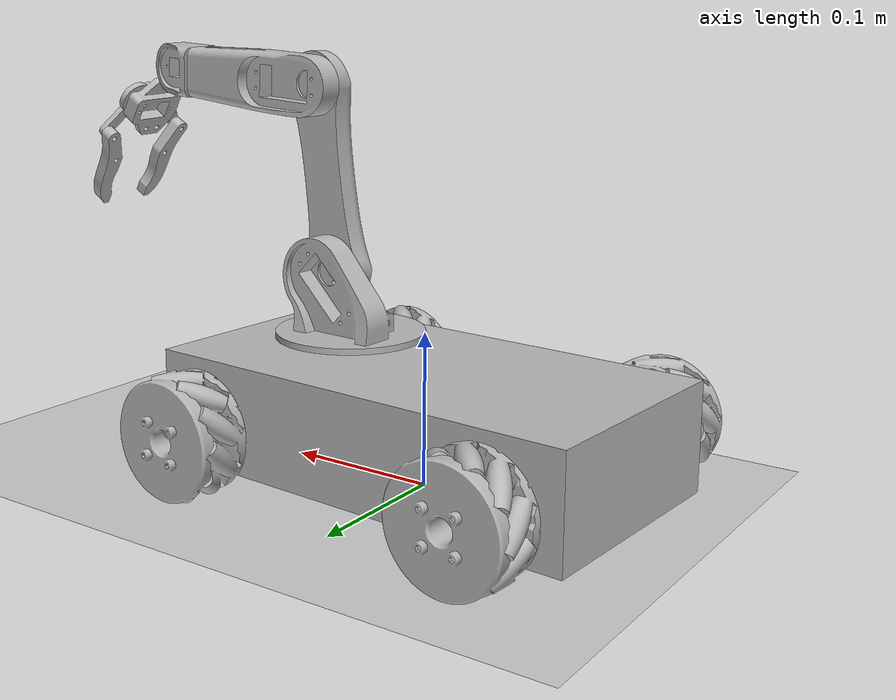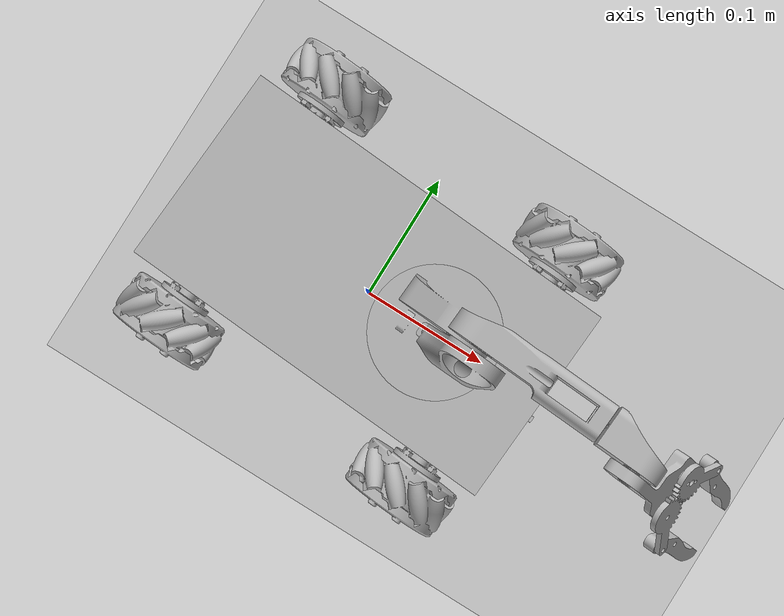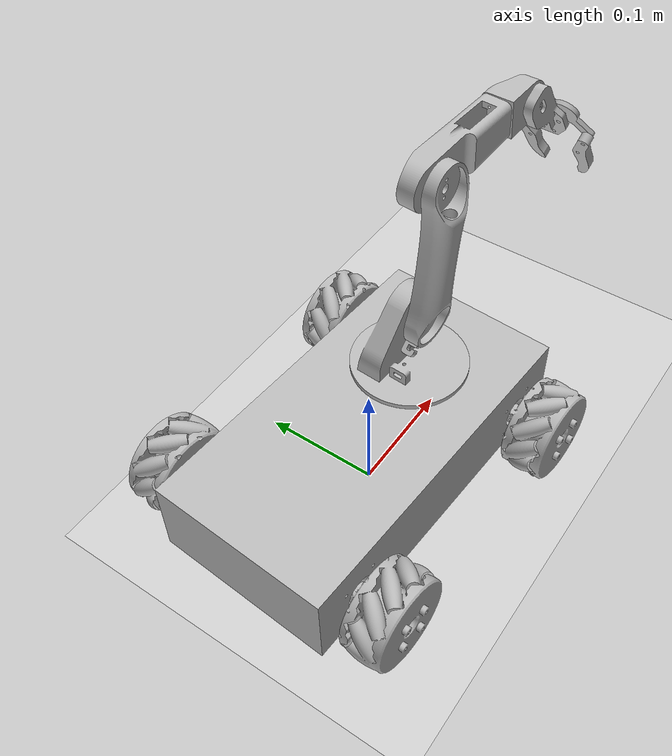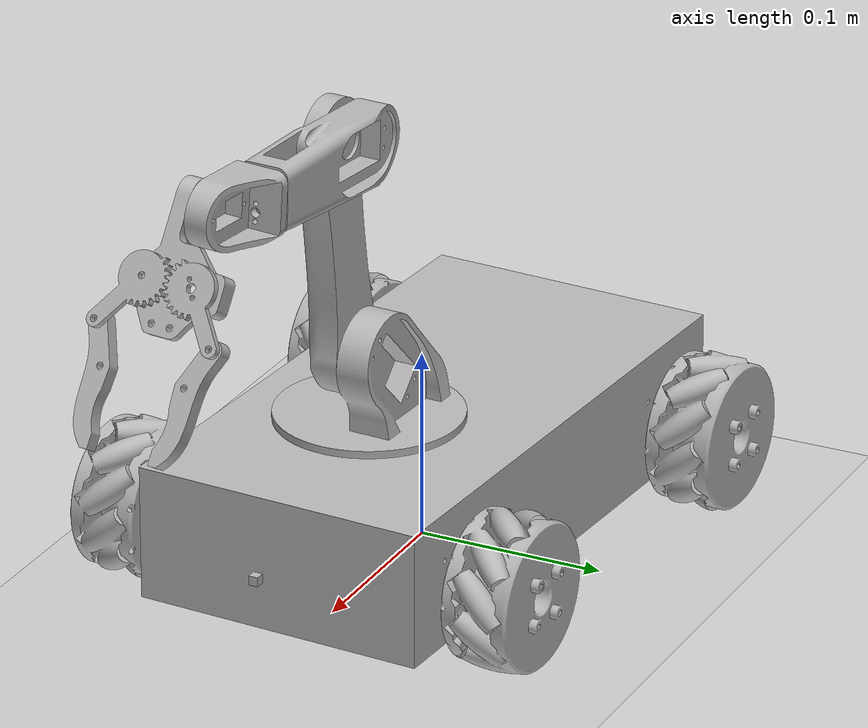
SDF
<sdf version="1.7">
 <world name="default">
  <light name="sun" type="directional">
   <pose>0 0 10 0 -0 0</pose>
   <diffuse>0.8 0.8 0.8 1</diffuse>
   <specular>0.2 0.2 0.2 1</specular>
   <attenuation>
    <range>1000</range>
    <constant>0.9</constant>
    <linear>0.01</linear>
    <quadratic>0.001</quadratic>
   </attenuation>
   <direction>-0.5 0.1 -0.9</direction>
   <spot><inner_angle>0</inner_angle><outer_angle>0</outer_angle><falloff>0</falloff></spot>
  </light>
  <model name="ground_plane">
   <static>1</static>
   <link name="link">
    <collision name="collision">
     <geometry><plane><normal>0 0 1</normal><size>100 100</size></plane></geometry>
     <surface><friction><ode><mu>100</mu><mu2>50</mu2></ode></friction></surface>
    </collision>
    <visual name="visual">
     <cast_shadows>0</cast_shadows>
     <geometry><plane><normal>0 0 1</normal><size>100 100</size></plane></geometry>
     <material>
      <script><uri>file://media/materials/scripts/gazebo.material</uri><name>Gazebo/Grey</name></script>
     </material>
    </visual>
   </link>
  </model>
  <gravity>0 0 -9.8</gravity>
  <magnetic_field>6e-06 2.3e-05 -4.2e-05</magnetic_field>
  <atmosphere type="adiabatic"/>
  <physics type="ode">
   <max_step_size>0.001</max_step_size>
   <real_time_factor>1</real_time_factor>
   <real_time_update_rate>1000</real_time_update_rate>
  </physics>
  <scene><ambient>0.4 0.4 0.4 1</ambient><background>0.7 0.7 0.7 1</background><shadows>1</shadows></scene>
  <audio><device>default</device></audio>
  <spherical_coordinates>
   <surface_model>EARTH_WGS84</surface_model>
   <latitude_deg>0</latitude_deg>
   <longitude_deg>0</longitude_deg>
   <elevation>0</elevation>
   <heading_deg>0</heading_deg>
  </spherical_coordinates>
  <model name="robot">
   <link name="base_footprint">
    <inertial>
     <pose>1.7e-05 -1e-06 0.043584 0 -0 0</pose>
     <mass>8.77909</mass>
     <inertia>
      <ixx>0.0307088</ixx>
      <ixy>1.50073e-06</ixy>
      <ixz>1.20974e-06</ixz>
      <iyy>0.0853345</iyy>
      <iyz>-7.95653e-08</iyz>
      <izz>0.102806</izz>
     </inertia>
    </inertial>
    <collision name="base_footprint_fixed_joint_lump__base_link_collision">
     <pose>0.15 0.06797 0.008 0 -0 0</pose>
     <geometry>
      <mesh><scale>0.001 0.001 0.001</scale><uri>model://mecanum_description/meshes/base_link.stl</uri></mesh>
     </geometry>
    </collision>
    <collision name="base_footprint_fixed_joint_lump__imu_link_1_collision_1">
     <pose>0.15 0.06797 0.008 0 -0 0</pose>
     <geometry>
      <mesh><scale>0.001 0.001 0.001</scale><uri>model://mecanum_description/meshes/imu_link_1.stl</uri></mesh>
     </geometry>
    </collision>
    <collision name="base_footprint_fixed_joint_lump__lidar_front_1_collision_2">
     <pose>0.15 0.05794 0 0 -0 0</pose>
     <geometry>
      <mesh><scale>0.001 0.001 0.001</scale><uri>model://mecanum_description/meshes/lidar_front_1.stl</uri></mesh>
     </geometry>
    </collision>
    <visual name="base_footprint_visual">
     <geometry><box><size>0.0001 0.0001 0.0001</size></box></geometry>
    </visual>
    <visual name="base_footprint_fixed_joint_lump__base_link_visual_1">
     <pose>0.15 0.06797 0.008 0 -0 0</pose>
     <geometry>
      <mesh><scale>0.001 0.001 0.001</scale><uri>model://mecanum_description/meshes/base_link.stl</uri></mesh>
     </geometry>
    </visual>
    <visual name="base_footprint_fixed_joint_lump__imu_link_1_visual_2">
     <pose>0.15 0.06797 0.008 0 -0 0</pose>
     <geometry>
      <mesh><scale>0.001 0.001 0.001</scale><uri>model://mecanum_description/meshes/imu_link_1.stl</uri></mesh>
     </geometry>
    </visual>
    <visual name="base_footprint_fixed_joint_lump__lidar_front_1_visual_3">
     <pose>0.15 0.05794 0 0 -0 0</pose>
     <geometry>
      <mesh><scale>0.001 0.001 0.001</scale><uri>model://mecanum_description/meshes/lidar_front_1.stl</uri></mesh>
     </geometry>
    </visual>
    <sensor name="imu_sensor" type="imu">
     <plugin name="imu_plugin" filename="libgazebo_ros_imu_sensor.so">
      <ros><namespace>/demo</namespace><remapping>~/out:=imu</remapping></ros>
      <initial_orientation_as_reference>0</initial_orientation_as_reference>
     </plugin>
     <always_on>1</always_on>
     <update_rate>100</update_rate>
     <visualize>1</visualize>
     <imu>
      <angular_velocity>
       <x>
        <noise type="gaussian">
         <mean>0</mean>
         <stddev>0.0002</stddev>
         <bias_mean>7.5e-06</bias_mean>
         <bias_stddev>8e-07</bias_stddev>
        </noise>
       </x>
       <y>
        <noise type="gaussian">
         <mean>0</mean>
         <stddev>0.0002</stddev>
         <bias_mean>7.5e-06</bias_mean>
         <bias_stddev>8e-07</bias_stddev>
        </noise>
       </y>
       <z>
        <noise type="gaussian">
         <mean>0</mean>
         <stddev>0.0002</stddev>
         <bias_mean>7.5e-06</bias_mean>
         <bias_stddev>8e-07</bias_stddev>
        </noise>
       </z>
      </angular_velocity>
      <linear_acceleration>
       <x>
        <noise type="gaussian">
         <mean>0</mean>
         <stddev>0.017</stddev>
         <bias_mean>0.1</bias_mean>
         <bias_stddev>0.001</bias_stddev>
        </noise>
       </x>
       <y>
        <noise type="gaussian">
         <mean>0</mean>
         <stddev>0.017</stddev>
         <bias_mean>0.1</bias_mean>
         <bias_stddev>0.001</bias_stddev>
        </noise>
       </y>
       <z>
        <noise type="gaussian">
         <mean>0</mean>
         <stddev>0.017</stddev>
         <bias_mean>0.1</bias_mean>
         <bias_stddev>0.001</bias_stddev>
        </noise>
       </z>
      </linear_acceleration>
     </imu>
     <pose>0 0 0.016 0 -0 0</pose>
    </sensor>
    <sensor name="lidar" type="ray">
     <always_on>1</always_on>
     <visualize>1</visualize>
     <update_rate>5</update_rate>
     <ray>
      <scan>
       <horizontal>
        <samples>360</samples>
        <resolution>1</resolution>
        <min_angle>0</min_angle>
        <max_angle>6.28</max_angle>
       </horizontal>
       <vertical><samples>1</samples><min_angle>0</min_angle><max_angle>0</max_angle></vertical>
      </scan>
      <range><min>0.12</min><max>3.5</max><resolution>0.015</resolution></range>
      <noise><type>gaussian</type><mean>0</mean><stddev>0.01</stddev></noise>
     </ray>
     <plugin name="scan" filename="libgazebo_ros_ray_sensor.so">
      <ros><remapping>~/out:=scan</remapping></ros>
      <output_type>sensor_msgs/LaserScan</output_type>
      <frame_name>lidar_front_1</frame_name>
     </plugin>
     <pose>0.15 -0.01003 0.0355 0 -0 0</pose>
    </sensor>
   </link>
   <joint name="rev_waist" type="revolute">
    <pose relative_to="base_footprint">0.05925 0 0.079 0 -0 0</pose>
    <parent>base_footprint</parent>
    <child>Waist-r4_1</child>
    <axis>
     <xyz>0 0 1</xyz>
     <limit><lower>-1e+16</lower><upper>1e+16</upper></limit>
     <dynamics><spring_reference>0</spring_reference><spring_stiffness>0</spring_stiffness></dynamics>
    </axis>
   </joint>
   <link name="Waist-r4_1">
    <pose relative_to="rev_waist">0 0 0 0 -0 0</pose>
    <inertial>
     <pose>0.001372 0.006434 0.025889 0 -0 0</pose>
     <mass>0.534096</mass>
     <inertia>
      <ixx>0.000353</ixx>
      <ixy>-5e-06</ixy>
      <ixz>-4.9e-05</ixz>
      <iyy>0.000456</iyy>
      <iyz>-4.1e-05</iyz>
      <izz>0.000429</izz>
     </inertia>
    </inertial>
    <collision name="Waist-r4_1_collision">
     <pose>0.09075 0.06797 -0.071 0 -0 0</pose>
     <geometry>
      <mesh><scale>0.001 0.001 0.001</scale><uri>model://mecanum_description/meshes/Waist-r4_1.stl</uri></mesh>
     </geometry>
    </collision>
    <visual name="Waist-r4_1_visual">
     <pose>0.09075 0.06797 -0.071 0 -0 0</pose>
     <geometry>
      <mesh><scale>0.001 0.001 0.001</scale><uri>model://mecanum_description/meshes/Waist-r4_1.stl</uri></mesh>
     </geometry>
    </visual>
   </link>
   <joint name="rev_shoulder" type="revolute">
    <pose relative_to="Waist-r4_1">0.013919 0.004 0.048876 0 -0 0</pose>
    <parent>Waist-r4_1</parent>
    <child>Arm_01-r4_1</child>
    <axis>
     <xyz>0 -1 0</xyz>
     <limit><lower>-1e+16</lower><upper>1e+16</upper></limit>
     <dynamics><spring_reference>0</spring_reference><spring_stiffness>0</spring_stiffness></dynamics>
    </axis>
   </joint>
   <link name="Arm_01-r4_1">
    <pose relative_to="rev_shoulder">0 0 0 0 -0 0</pose>
    <inertial>
     <pose>0.007276 -0.009968 0.058292 0 -0 0</pose>
     <mass>0.505447</mass>
     <inertia>
      <ixx>0.00085</ixx>
      <ixy>0</ixy>
      <ixz>-0.000107</ixz>
      <iyy>0.000903</iyy>
      <iyz>-1e-06</iyz>
      <izz>8.7e-05</izz>
     </inertia>
    </inertial>
    <collision name="Arm_01-r4_1_collision">
     <pose>0.076831 0.06397 -0.119876 0 -0 0</pose>
     <geometry>
      <mesh><scale>0.001 0.001 0.001</scale><uri>model://mecanum_description/meshes/Arm_01-r4_1.stl</uri></mesh>
     </geometry>
    </collision>
    <visual name="Arm_01-r4_1_visual">
     <pose>0.076831 0.06397 -0.119876 0 -0 0</pose>
     <geometry>
      <mesh><scale>0.001 0.001 0.001</scale><uri>model://mecanum_description/meshes/Arm_01-r4_1.stl</uri></mesh>
     </geometry>
    </visual>
   </link>
   <joint name="rev_elbow" type="revolute">
    <pose relative_to="Arm_01-r4_1">0.015353 -0.0022 0.119168 0 -0 0</pose>
    <parent>Arm_01-r4_1</parent>
    <child>Arm_02_v3-r4_1</child>
    <axis>
     <xyz>0 -1 0</xyz>
     <limit><lower>-1e+16</lower><upper>1e+16</upper></limit>
     <dynamics><spring_reference>0</spring_reference><spring_stiffness>0</spring_stiffness></dynamics>
    </axis>
   </joint>
   <link name="Arm_02_v3-r4_1">
    <pose relative_to="rev_elbow">0 0 0 0 -0 0</pose>
    <inertial>
     <pose>0.039213 0.010609 0.002415 0 -0 0</pose>
     <mass>0.39461</mass>
     <inertia>
      <ixx>7.4e-05</ixx>
      <ixy>-2e-06</ixy>
      <ixz>-2e-05</ixz>
      <iyy>0.000456</iyy>
      <iyz>0</iyz>
      <izz>0.000428</izz>
     </inertia>
    </inertial>
    <collision name="Arm_02_v3-r4_1_collision">
     <pose>0.061478 0.06617 -0.239044 0 -0 0</pose>
     <geometry>
      <mesh><scale>0.001 0.001 0.001</scale><uri>model://mecanum_description/meshes/Arm_02_v3-r4_1.stl</uri></mesh>
     </geometry>
    </collision>
    <visual name="Arm_02_v3-r4_1_visual">
     <pose>0.061478 0.06617 -0.239044 0 -0 0</pose>
     <geometry>
      <mesh><scale>0.001 0.001 0.001</scale><uri>model://mecanum_description/meshes/Arm_02_v3-r4_1.stl</uri></mesh>
     </geometry>
    </visual>
   </link>
   <joint name="rev_wrist" type="revolute">
    <pose relative_to="Arm_02_v3-r4_1">0.089892 0.0107 -0.000159 0 -0 0</pose>
    <parent>Arm_02_v3-r4_1</parent>
    <child>Arm_03-r4_1</child>
    <axis>
     <xyz>0.998519 0 0.054413</xyz>
     <limit><lower>-1e+16</lower><upper>1e+16</upper></limit>
     <dynamics><spring_reference>0</spring_reference><spring_stiffness>0</spring_stiffness></dynamics>
    </axis>
   </joint>
   <link name="Arm_03-r4_1">
    <pose relative_to="rev_wrist">0 0 0 0 -0 0</pose>
    <inertial>
     <pose>0.01938 -0.005114 0.006263 0 -0 0</pose>
     <mass>0.129528</mass>
     <inertia>
      <ixx>2.1e-05</ixx>
      <ixy>5e-06</ixy>
      <ixz>-1e-06</ixz>
      <iyy>3.9e-05</iyy>
      <iyz>0</iyz>
      <izz>3.1e-05</izz>
     </inertia>
    </inertial>
    <collision name="Arm_03-r4_1_collision">
     <pose>-0.028414 0.05547 -0.238885 0 -0 0</pose>
     <geometry>
      <mesh><scale>0.001 0.001 0.001</scale><uri>model://mecanum_description/meshes/Arm_03-r4_1.stl</uri></mesh>
     </geometry>
    </collision>
    <visual name="Arm_03-r4_1_visual">
     <pose>-0.028414 0.05547 -0.238885 0 -0 0</pose>
     <geometry>
      <mesh><scale>0.001 0.001 0.001</scale><uri>model://mecanum_description/meshes/Arm_03-r4_1.stl</uri></mesh>
     </geometry>
    </visual>
   </link>
   <joint name="rev_effector" type="revolute">
    <pose relative_to="Arm_03-r4_1">0.029511 -0.013847 0.007027 0 -0 0</pose>
    <parent>Arm_03-r4_1</parent>
    <child>Gripper_base-r4_1</child>
    <axis>
     <xyz>0.001606 0.999564 -0.029478</xyz>
     <limit><lower>-1e+16</lower><upper>1e+16</upper></limit>
     <dynamics><spring_reference>0</spring_reference><spring_stiffness>0</spring_stiffness></dynamics>
    </axis>
   </joint>
   <link name="Gripper_base-r4_1">
    <pose relative_to="rev_effector">0 0 0 0 -0 0</pose>
    <inertial>
     <pose>0.017263 9.7e-05 -0.017054 0 -0 0</pose>
     <mass>0.123413</mass>
     <inertia>
      <ixx>4.2e-05</ixx>
      <ixy>-7e-06</ixy>
      <ixz>2.5e-05</ixz>
      <iyy>5.7e-05</iyy>
      <iyz>8e-06</iyz>
      <izz>4.1e-05</izz>
     </inertia>
    </inertial>
    <collision name="Gripper_base-r4_1_collision">
     <pose>-0.057925 0.069317 -0.245912 0 -0 0</pose>
     <geometry>
      <mesh>
       <scale>0.001 0.001 0.001</scale>
       <uri>model://mecanum_description/meshes/Gripper_base-r4_1.stl</uri>
      </mesh>
     </geometry>
    </collision>
    <visual name="Gripper_base-r4_1_visual">
     <pose>-0.057925 0.069317 -0.245912 0 -0 0</pose>
     <geometry>
      <mesh>
       <scale>0.001 0.001 0.001</scale>
       <uri>model://mecanum_description/meshes/Gripper_base-r4_1.stl</uri>
      </mesh>
     </geometry>
    </visual>
   </link>
   <joint name="lgear" type="revolute">
    <pose relative_to="Gripper_base-r4_1">0.031814 0.015753 -0.025566 0 -0 0</pose>
    <parent>Gripper_base-r4_1</parent>
    <child>gear2-r4_1</child>
    <axis>
     <xyz>0.852736 0.014028 0.522154</xyz>
     <limit><lower>-1e+16</lower><upper>1e+16</upper></limit>
     <dynamics><spring_reference>0</spring_reference><spring_stiffness>0</spring_stiffness></dynamics>
    </axis>
   </joint>
   <link name="gear2-r4_1">
    <pose relative_to="lgear">0 0 0 0 -0 0</pose>
    <inertial>
     <pose>0.007291 0.002733 -0.001447 0 -0 0</pose>
     <mass>0.020142</mass>
     <inertia>
      <ixx>3e-06</ixx>
      <ixy>-1e-06</ixy>
      <ixz>1e-06</ixz>
      <iyy>2e-06</iyy>
      <iyz>1e-06</iyz>
      <izz>2e-06</izz>
     </inertia>
    </inertial>
    <collision name="gear2-r4_1_collision">
     <pose>-0.089739 0.053564 -0.220346 0 -0 0</pose>
     <geometry>
      <mesh><scale>0.001 0.001 0.001</scale><uri>model://mecanum_description/meshes/gear2-r4_1.stl</uri></mesh>
     </geometry>
    </collision>
    <visual name="gear2-r4_1_visual">
     <pose>-0.089739 0.053564 -0.220346 0 -0 0</pose>
     <geometry>
      <mesh><scale>0.001 0.001 0.001</scale><uri>model://mecanum_description/meshes/gear2-r4_1.stl</uri></mesh>
     </geometry>
    </visual>
   </link>
   <joint name="lfinger_mimic" type="revolute">
    <pose relative_to="gear2-r4_1">0.016111 0.017188 -0.02007 0 -0 0</pose>
    <parent>gear2-r4_1</parent>
    <child>Gripper_finger-r4_1</child>
    <axis>
     <xyz>0.852736 0.014028 0.522154</xyz>
     <limit><lower>-1e+16</lower><upper>1e+16</upper></limit>
     <dynamics><spring_reference>0</spring_reference><spring_stiffness>0</spring_stiffness></dynamics>
    </axis>
   </joint>
   <link name="Gripper_finger-r4_1">
    <pose relative_to="lfinger_mimic">0 0 0 0 -0 0</pose>
    <inertial>
     <pose>0.010193 -0.00728 -0.024589 0 -0 0</pose>
     <mass>0.0423698</mass>
     <inertia>
      <ixx>1e-05</ixx>
      <ixy>1e-06</ixy>
      <ixz>5e-06</ixz>
      <iyy>1.3e-05</iyy>
      <iyz>-2e-06</iyz>
      <izz>5e-06</izz>
     </inertia>
    </inertial>
    <collision name="Gripper_finger-r4_1_collision">
     <pose>-0.10585 0.036376 -0.200276 0 -0 0</pose>
     <geometry>
      <mesh>
       <scale>0.001 0.001 0.001</scale>
       <uri>model://mecanum_description/meshes/Gripper_finger-r4_1.stl</uri>
      </mesh>
     </geometry>
    </collision>
    <visual name="Gripper_finger-r4_1_visual">
     <pose>-0.10585 0.036376 -0.200276 0 -0 0</pose>
     <geometry>
      <mesh>
       <scale>0.001 0.001 0.001</scale>
       <uri>model://mecanum_description/meshes/Gripper_finger-r4_1.stl</uri>
      </mesh>
     </geometry>
    </visual>
   </link>
   <joint name="rgear" type="revolute">
    <pose relative_to="Gripper_base-r4_1">0.031771 -0.011136 -0.024773 0 -0 0</pose>
    <parent>Gripper_base-r4_1</parent>
    <child>gear1-r4_1</child>
    <axis>
     <xyz>0.852736 0.014028 0.522154</xyz>
     <limit><lower>-1e+16</lower><upper>1e+16</upper></limit>
     <dynamics><spring_reference>0</spring_reference><spring_stiffness>0</spring_stiffness></dynamics>
    </axis>
   </joint>
   <link name="gear1-r4_1">
    <pose relative_to="rgear">0 0 0 0 -0 0</pose>
    <inertial>
     <pose>0.007239 -0.002804 -0.001214 0 -0 0</pose>
     <mass>0.0207367</mass>
     <inertia>
      <ixx>3e-06</ixx>
      <ixy>1e-06</ixy>
      <ixz>1e-06</ixz>
      <iyy>2e-06</iyy>
      <iyz>-1e-06</iyz>
      <izz>2e-06</izz>
     </inertia>
    </inertial>
    <collision name="gear1-r4_1_collision">
     <pose>-0.089696 0.080453 -0.221139 0 -0 0</pose>
     <geometry>
      <mesh><scale>0.001 0.001 0.001</scale><uri>model://mecanum_description/meshes/gear1-r4_1.stl</uri></mesh>
     </geometry>
    </collision>
    <visual name="gear1-r4_1_visual">
     <pose>-0.089696 0.080453 -0.221139 0 -0 0</pose>
     <geometry>
      <mesh><scale>0.001 0.001 0.001</scale><uri>model://mecanum_description/meshes/gear1-r4_1.stl</uri></mesh>
     </geometry>
    </visual>
   </link>
   <joint name="rfinger_mimic" type="revolute">
    <pose relative_to="gear1-r4_1">0.016021 -0.018479 -0.018965 0 -0 0</pose>
    <parent>gear1-r4_1</parent>
    <child>Gripper_finger-r4_2</child>
    <axis>
     <xyz>-0.852736 -0.014028 -0.522154</xyz>
     <limit><lower>-1e+16</lower><upper>1e+16</upper></limit>
     <dynamics><spring_reference>0</spring_reference><spring_stiffness>0</spring_stiffness></dynamics>
    </axis>
   </joint>
   <link name="Gripper_finger-r4_2">
    <pose relative_to="rfinger_mimic">0 0 0 0 -0 0</pose>
    <inertial>
     <pose>0.010302 0.005041 -0.025099 0 -0 0</pose>
     <mass>0.0423698</mass>
     <inertia>
      <ixx>1e-05</ixx>
      <ixy>-1e-06</ixy>
      <ixz>6e-06</ixz>
      <iyy>1.3e-05</iyy>
      <iyz>1e-06</iyz>
      <izz>4e-06</izz>
     </inertia>
    </inertial>
    <collision name="Gripper_finger-r4_2_collision">
     <pose>-0.105717 0.098932 -0.202174 0 -0 0</pose>
     <geometry>
      <mesh>
       <scale>0.001 0.001 0.001</scale>
       <uri>model://mecanum_description/meshes/Gripper_finger-r4_2.stl</uri>
      </mesh>
     </geometry>
    </collision>
    <visual name="Gripper_finger-r4_2_visual">
     <pose>-0.105717 0.098932 -0.202174 0 -0 0</pose>
     <geometry>
      <mesh>
       <scale>0.001 0.001 0.001</scale>
       <uri>model://mecanum_description/meshes/Gripper_finger-r4_2.stl</uri>
      </mesh>
     </geometry>
    </visual>
   </link>
   <joint name="wheel_bl" type="revolute">
    <pose relative_to="base_footprint">-0.105 0.078 0.038 0 -0 0</pose>
    <parent>base_footprint</parent>
    <child>Mecanum_Wheel_Assembly_Left-r4_1</child>
    <axis>
     <xyz>0 1 0</xyz>
     <limit><lower>-1e+16</lower><upper>1e+16</upper></limit>
     <dynamics><spring_reference>0</spring_reference><spring_stiffness>0</spring_stiffness></dynamics>
    </axis>
   </joint>
   <link name="Mecanum_Wheel_Assembly_Left-r4_1">
    <pose relative_to="wheel_bl">0 0 0 0 -0 0</pose>
    <inertial>
     <pose>-0 0.026897 1.5e-05 0 -0 0</pose>
     <mass>0.95843</mass>
     <inertia>
      <ixx>0.000493</ixx>
      <ixy>0</ixy>
      <ixz>0</ixz>
      <iyy>0.000706</iyy>
      <iyz>0</iyz>
      <izz>0.000493</izz>
     </inertia>
    </inertial>
    <collision name="Mecanum_Wheel_Assembly_Left-r4_1_collision">
     <pose>0.255 -0.01003 -0.03 0 -0 0</pose>
     <geometry>
      <mesh>
       <scale>0.001 0.001 0.001</scale>
       <uri>model://mecanum_description/meshes/Mecanum_Wheel_Assembly_Left-r4_1.stl</uri>
      </mesh>
     </geometry>
    </collision>
    <visual name="Mecanum_Wheel_Assembly_Left-r4_1_visual">
     <pose>0.255 -0.01003 -0.03 0 -0 0</pose>
     <geometry>
      <mesh>
       <scale>0.001 0.001 0.001</scale>
       <uri>model://mecanum_description/meshes/Mecanum_Wheel_Assembly_Left-r4_1.stl</uri>
      </mesh>
     </geometry>
    </visual>
   </link>
   <joint name="wheel_br" type="revolute">
    <pose relative_to="base_footprint">-0.105 -0.078 0.038 0 -0 0</pose>
    <parent>base_footprint</parent>
    <child>Mecanum_Wheel_Assembly_Right-r4_2</child>
    <axis>
     <xyz>0 1 0</xyz>
     <limit><lower>-1e+16</lower><upper>1e+16</upper></limit>
     <dynamics><spring_reference>0</spring_reference><spring_stiffness>0</spring_stiffness></dynamics>
    </axis>
   </joint>
   <link name="Mecanum_Wheel_Assembly_Right-r4_2">
    <pose relative_to="wheel_br">0 0 0 0 -0 0</pose>
    <inertial>
     <pose>-1.5e-05 -0.026871 -0 0 -0 0</pose>
     <mass>0.952524</mass>
     <inertia>
      <ixx>0.000492</ixx>
      <ixy>0</ixy>
      <ixz>0</ixz>
      <iyy>0.000705</iyy>
      <iyz>0</iyz>
      <izz>0.000492</izz>
     </inertia>
    </inertial>
    <collision name="Mecanum_Wheel_Assembly_Right-r4_2_collision">
     <pose>0.255 0.14597 -0.03 0 -0 0</pose>
     <geometry>
      <mesh>
       <scale>0.001 0.001 0.001</scale>
       <uri>model://mecanum_description/meshes/Mecanum_Wheel_Assembly_Right-r4_2.stl</uri>
      </mesh>
     </geometry>
    </collision>
    <visual name="Mecanum_Wheel_Assembly_Right-r4_2_visual">
     <pose>0.255 0.14597 -0.03 0 -0 0</pose>
     <geometry>
      <mesh>
       <scale>0.001 0.001 0.001</scale>
       <uri>model://mecanum_description/meshes/Mecanum_Wheel_Assembly_Right-r4_2.stl</uri>
      </mesh>
     </geometry>
    </visual>
   </link>
   <joint name="wheel_fl" type="revolute">
    <pose relative_to="base_footprint">0.105 0.078 0.038 0 -0 0</pose>
    <parent>base_footprint</parent>
    <child>Mecanum_Wheel_Assembly_Right-r4_1</child>
    <axis>
     <xyz>0 1 0</xyz>
     <limit><lower>-1e+16</lower><upper>1e+16</upper></limit>
     <dynamics><spring_reference>0</spring_reference><spring_stiffness>0</spring_stiffness></dynamics>
    </axis>
   </joint>
   <link name="Mecanum_Wheel_Assembly_Right-r4_1">
    <pose relative_to="wheel_fl">0 0 0 0 -0 0</pose>
    <inertial>
     <pose>-1.5e-05 0.02687 0 0 -0 0</pose>
     <mass>0.952524</mass>
     <inertia>
      <ixx>0.000492</ixx>
      <ixy>0</ixy>
      <ixz>0</ixz>
      <iyy>0.000705</iyy>
      <iyz>0</iyz>
      <izz>0.000492</izz>
     </inertia>
    </inertial>
    <collision name="Mecanum_Wheel_Assembly_Right-r4_1_collision">
     <pose>0.045 -0.01003 -0.03 0 -0 0</pose>
     <geometry>
      <mesh>
       <scale>0.001 0.001 0.001</scale>
       <uri>model://mecanum_description/meshes/Mecanum_Wheel_Assembly_Right-r4_1.stl</uri>
      </mesh>
     </geometry>
    </collision>
    <visual name="Mecanum_Wheel_Assembly_Right-r4_1_visual">
     <pose>0.045 -0.01003 -0.03 0 -0 0</pose>
     <geometry>
      <mesh>
       <scale>0.001 0.001 0.001</scale>
       <uri>model://mecanum_description/meshes/Mecanum_Wheel_Assembly_Right-r4_1.stl</uri>
      </mesh>
     </geometry>
    </visual>
   </link>
   <joint name="wheel_fr" type="revolute">
    <pose relative_to="base_footprint">0.105 -0.078 0.038 0 -0 0</pose>
    <parent>base_footprint</parent>
    <child>Mecanum_Wheel_Assembly_Left-r4_2</child>
    <axis>
     <xyz>0 1 0</xyz>
     <limit><lower>-1e+16</lower><upper>1e+16</upper></limit>
     <dynamics><spring_reference>0</spring_reference><spring_stiffness>0</spring_stiffness></dynamics>
    </axis>
   </joint>
   <link name="Mecanum_Wheel_Assembly_Left-r4_2">
    <pose relative_to="wheel_fr">0 0 0 0 -0 0</pose>
    <inertial>
     <pose>-1.5e-05 -0.026898 0 0 -0 0</pose>
     <mass>0.95843</mass>
     <inertia>
      <ixx>0.000493</ixx>
      <ixy>0</ixy>
      <ixz>0</ixz>
      <iyy>0.000706</iyy>
      <iyz>0</iyz>
      <izz>0.000493</izz>
     </inertia>
    </inertial>
    <collision name="Mecanum_Wheel_Assembly_Left-r4_2_collision">
     <pose>0.045 0.14597 -0.03 0 -0 0</pose>
     <geometry>
      <mesh>
       <scale>0.001 0.001 0.001</scale>
       <uri>model://mecanum_description/meshes/Mecanum_Wheel_Assembly_Left-r4_2.stl</uri>
      </mesh>
     </geometry>
    </collision>
    <visual name="Mecanum_Wheel_Assembly_Left-r4_2_visual">
     <pose>0.045 0.14597 -0.03 0 -0 0</pose>
     <geometry>
      <mesh>
       <scale>0.001 0.001 0.001</scale>
       <uri>model://mecanum_description/meshes/Mecanum_Wheel_Assembly_Left-r4_2.stl</uri>
      </mesh>
     </geometry>
    </visual>
   </link>
   <static>0</static>
   <plugin name="object_controller" filename="libgazebo_ros_planar_move.so">
    <commandTopic>cmd_vel</commandTopic>
    <odometryTopic>odom</odometryTopic>
    <odometryFrame>odom</odometryFrame>
    <odometryRate>20.0</odometryRate>
    <robotBaseFrame>base_footprint</robotBaseFrame>
   </plugin>
   <pose>-0.001314 0.003314 0.001872 1.8e-05 0.000191 -0.061535</pose>
  </model>
 </world>
</sdf>
